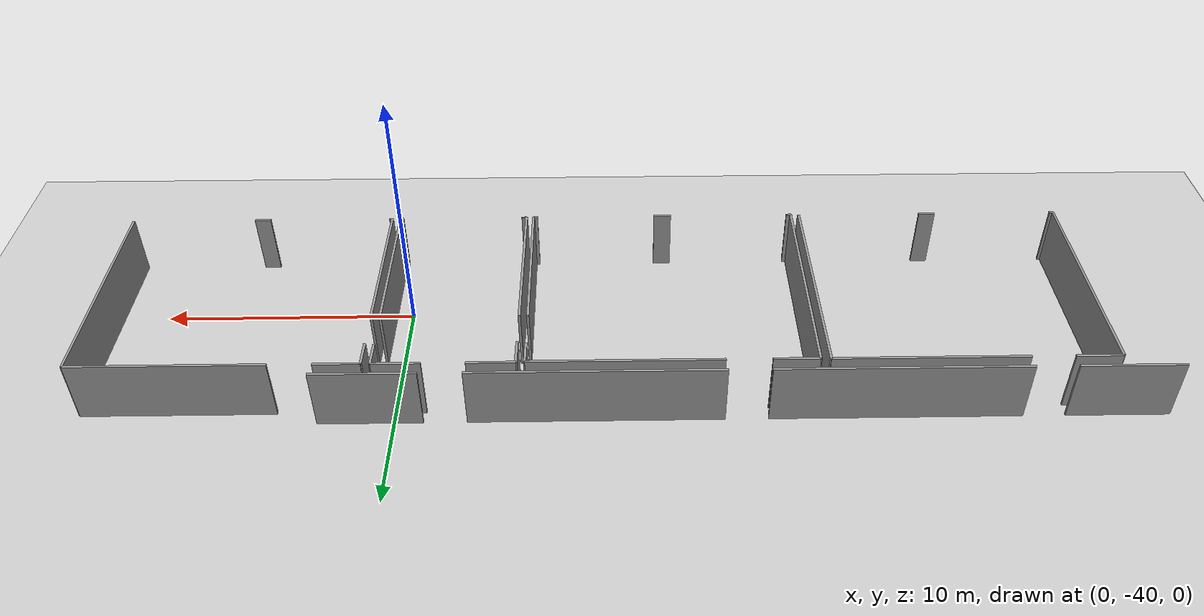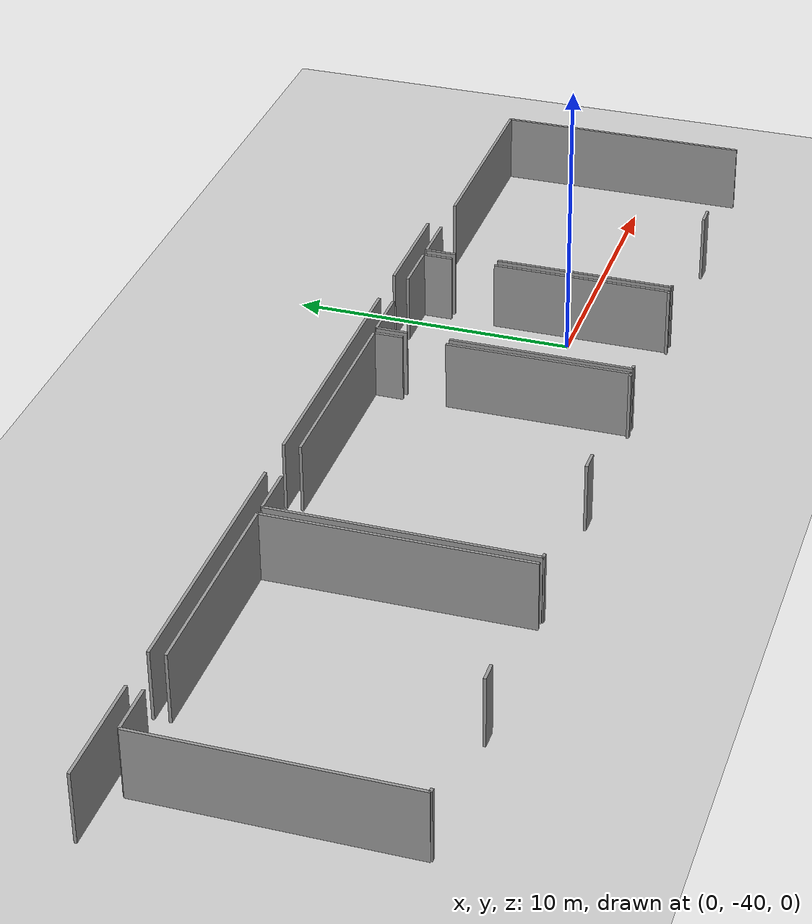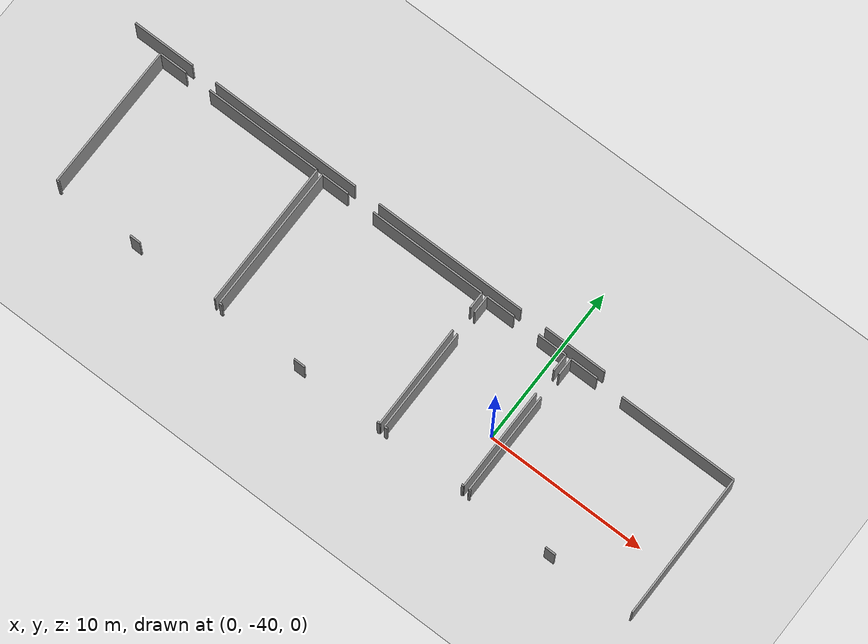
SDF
<sdf version="1.6">
 <world name="default">
  <model name="ground_plane">
   <static>1</static>
   <link name="link">
    <collision name="collision">
     <geometry><plane><normal>0 0 1</normal><size>100 100</size></plane></geometry>
     <surface><friction><ode><mu>100</mu><mu2>50</mu2></ode></friction></surface>
    </collision>
    <visual name="visual">
     <cast_shadows>0</cast_shadows>
     <geometry><plane><normal>0 0 1</normal><size>100 100</size></plane></geometry>
     <material>
      <script><uri>file://media/materials/scripts/gazebo.material</uri><name>Gazebo/Grey</name></script>
     </material>
    </visual>
   </link>
  </model>
  <model name="50015849">
   <static>1</static>
   <link name="Wall_76">
    <collision name="Wall_76_Collision">
     <geometry><box><size>3.97594416608 0.1 2.5</size></box></geometry>
     <pose>1.98797208304 0 1.25 0 0 0</pose>
    </collision>
    <visual name="Wall_76_Visual">
     <pose>1.98797208304 0 1.25 0 0 0</pose>
     <geometry><box><size>3.97594416608 0.1 2.5</size></box></geometry>
     <material>
      <script><uri>file://media/materials/scripts/gazebo.material</uri><name>Gazebo/Grey</name></script>
      <ambient>1 1 1 1</ambient>
     </material>
    </visual>
    <pose>128.94866861 -77.6431887316 0 0 0 3.14159265359</pose>
   </link>
   <link name="Wall_77">
    <collision name="Wall_77_Collision">
     <geometry><box><size>9.65815059663 0.1 2.5</size></box></geometry>
     <pose>4.82907529832 0 1.25 0 0 0</pose>
    </collision>
    <visual name="Wall_77_Visual">
     <pose>4.82907529832 0 1.25 0 0 0</pose>
     <geometry><box><size>9.65815059663 0.1 2.5</size></box></geometry>
     <material>
      <script><uri>file://media/materials/scripts/gazebo.material</uri><name>Gazebo/Grey</name></script>
      <ambient>1 1 1 1</ambient>
     </material>
    </visual>
    <pose>123.3388583 -77.6431887316 0 0 0 3.14159265359</pose>
   </link>
   <link name="Wall_78">
    <collision name="Wall_78_Collision">
     <geometry><box><size>9.58702458293 0.1 2.5</size></box></geometry>
     <pose>4.79351229146 0 1.25 0 0 0</pose>
    </collision>
    <visual name="Wall_78_Visual">
     <pose>4.79351229146 0 1.25 0 0 0</pose>
     <geometry><box><size>9.58702458293 0.1 2.5</size></box></geometry>
     <material>
      <script><uri>file://media/materials/scripts/gazebo.material</uri><name>Gazebo/Grey</name></script>
      <ambient>1 1 1 1</ambient>
     </material>
    </visual>
    <pose>112.063352956 -77.6431887316 0 0 0 3.14159265359</pose>
   </link>
   <link name="Wall_79">
    <collision name="Wall_79_Collision">
     <geometry><box><size>3.96451319959 0.1 2.5</size></box></geometry>
     <pose>1.9822565998 0 1.25 0 0 0</pose>
    </collision>
    <visual name="Wall_79_Visual">
     <pose>1.9822565998 0 1.25 0 0 0</pose>
     <geometry><box><size>3.96451319959 0.1 2.5</size></box></geometry>
     <material>
      <script><uri>file://media/materials/scripts/gazebo.material</uri><name>Gazebo/Grey</name></script>
      <ambient>1 1 1 1</ambient>
     </material>
    </visual>
    <pose>100.880565452 -77.6431887316 0 0 0 3.14159265359</pose>
   </link>
   <link name="Wall_121">
    <collision name="Wall_121_Collision">
     <geometry><box><size>0.669854636209 0.1 2.5</size></box></geometry>
     <pose>0.334927318105 0 1.25 0 0 0</pose>
    </collision>
    <visual name="Wall_121_Visual">
     <pose>0.334927318105 0 1.25 0 0 0</pose>
     <geometry><box><size>0.669854636209 0.1 2.5</size></box></geometry>
     <material>
      <script><uri>file://media/materials/scripts/gazebo.material</uri><name>Gazebo/Grey</name></script>
      <ambient>1 1 1 1</ambient>
     </material>
    </visual>
    <pose>104.812055859 -87.2195444125 0 0 0 3.14159265359</pose>
   </link>
   <link name="Wall_122">
    <collision name="Wall_122_Collision">
     <geometry><box><size>0.153682993897 0.1 2.5</size></box></geometry>
     <pose>0.0768414969486 0 1.25 0 0 0</pose>
    </collision>
    <visual name="Wall_122_Visual">
     <pose>0.0768414969486 0 1.25 0 0 0</pose>
     <geometry><box><size>0.153682993897 0.1 2.5</size></box></geometry>
     <material>
      <script><uri>file://media/materials/scripts/gazebo.material</uri><name>Gazebo/Grey</name></script>
      <ambient>1 1 1 1</ambient>
     </material>
    </visual>
    <pose>99.2441590937 -87.2195444125 0 0 0 3.14159265359</pose>
   </link>
   <link name="Wall_123">
    <collision name="Wall_123_Collision">
     <geometry><box><size>9.03554395524 0.1 2.5</size></box></geometry>
     <pose>4.51777197762 0 1.25 0 0 0</pose>
    </collision>
    <visual name="Wall_123_Visual">
     <pose>4.51777197762 0 1.25 0 0 0</pose>
     <geometry><box><size>9.03554395524 0.1 2.5</size></box></geometry>
     <material>
      <script><uri>file://media/materials/scripts/gazebo.material</uri><name>Gazebo/Grey</name></script>
      <ambient>1 1 1 1</ambient>
     </material>
    </visual>
    <pose>99.0904760998 -87.2195444125 0 0 0 1.57079632679</pose>
   </link>
   <link name="Wall_124">
    <collision name="Wall_124_Collision">
     <geometry><box><size>1.76570329021 0.1 2.5</size></box></geometry>
     <pose>0.882851645107 0 1.25 0 0 0</pose>
    </collision>
    <visual name="Wall_124_Visual">
     <pose>0.882851645107 0 1.25 0 0 0</pose>
     <geometry><box><size>1.76570329021 0.1 2.5</size></box></geometry>
     <material>
      <script><uri>file://media/materials/scripts/gazebo.material</uri><name>Gazebo/Grey</name></script>
      <ambient>1 1 1 1</ambient>
     </material>
    </visual>
    <pose>99.0904760998 -78.1840004572 0 0 0 0.0</pose>
   </link>
   <link name="Wall_125">
    <collision name="Wall_125_Collision">
     <geometry><box><size>7.38821467355 0.1 2.5</size></box></geometry>
     <pose>3.69410733678 0 1.25 0 0 0</pose>
    </collision>
    <visual name="Wall_125_Visual">
     <pose>3.69410733678 0 1.25 0 0 0</pose>
     <geometry><box><size>7.38821467355 0.1 2.5</size></box></geometry>
     <material>
      <script><uri>file://media/materials/scripts/gazebo.material</uri><name>Gazebo/Grey</name></script>
      <ambient>1 1 1 1</ambient>
     </material>
    </visual>
    <pose>102.487251297 -78.1840004572 0 0 0 0.0</pose>
   </link>
   <link name="Wall_126">
    <collision name="Wall_126_Collision">
     <geometry><box><size>9.03564836625 0.1 2.5</size></box></geometry>
     <pose>4.51782418312 0 1.25 0 0 0</pose>
    </collision>
    <visual name="Wall_126_Visual">
     <pose>4.51782418312 0 1.25 0 0 0</pose>
     <geometry><box><size>9.03564836625 0.1 2.5</size></box></geometry>
     <material>
      <script><uri>file://media/materials/scripts/gazebo.material</uri><name>Gazebo/Grey</name></script>
      <ambient>1 1 1 1</ambient>
     </material>
    </visual>
    <pose>109.875465971 -78.1840004572 0 0 0 -1.56598894184</pose>
   </link>
   <link name="Wall_127">
    <collision name="Wall_127_Collision">
     <geometry><box><size>0.176798948351 0.1 2.5</size></box></geometry>
     <pose>0.0883994741755 0 1.25 0 0 0</pose>
    </collision>
    <visual name="Wall_127_Visual">
     <pose>0.0883994741755 0 1.25 0 0 0</pose>
     <geometry><box><size>0.176798948351 0.1 2.5</size></box></geometry>
     <material>
      <script><uri>file://media/materials/scripts/gazebo.material</uri><name>Gazebo/Grey</name></script>
      <ambient>1 1 1 1</ambient>
     </material>
    </visual>
    <pose>121.140810456 -87.2299592931 0 0 0 3.14159265359</pose>
   </link>
   <link name="Wall_128">
    <collision name="Wall_128_Collision">
     <geometry><box><size>0.707195793404 0.1 2.5</size></box></geometry>
     <pose>0.353597896702 0 1.25 0 0 0</pose>
    </collision>
    <visual name="Wall_128_Visual">
     <pose>0.353597896702 0 1.25 0 0 0</pose>
     <geometry><box><size>0.707195793404 0.1 2.5</size></box></geometry>
     <material>
      <script><uri>file://media/materials/scripts/gazebo.material</uri><name>Gazebo/Grey</name></script>
      <ambient>1 1 1 1</ambient>
     </material>
    </visual>
    <pose>116.051236132 -87.2299592931 0 0 0 3.14159265359</pose>
   </link>
   <link name="Wall_129">
    <collision name="Wall_129_Collision">
     <geometry><box><size>0.189500022227 0.1 2.5</size></box></geometry>
     <pose>0.0947500111134 0 1.25 0 0 0</pose>
    </collision>
    <visual name="Wall_129_Visual">
     <pose>0.0947500111134 0 1.25 0 0 0</pose>
     <geometry><box><size>0.189500022227 0.1 2.5</size></box></geometry>
     <material>
      <script><uri>file://media/materials/scripts/gazebo.material</uri><name>Gazebo/Grey</name></script>
      <ambient>1 1 1 1</ambient>
     </material>
    </visual>
    <pose>110.443712016 -87.2299592931 0 0 0 3.14159265359</pose>
   </link>
   <link name="Wall_130">
    <collision name="Wall_130_Collision">
     <geometry><box><size>9.02995548274 0.1 2.5</size></box></geometry>
     <pose>4.51497774137 0 1.25 0 0 0</pose>
    </collision>
    <visual name="Wall_130_Visual">
     <pose>4.51497774137 0 1.25 0 0 0</pose>
     <geometry><box><size>9.02995548274 0.1 2.5</size></box></geometry>
     <material>
      <script><uri>file://media/materials/scripts/gazebo.material</uri><name>Gazebo/Grey</name></script>
      <ambient>1 1 1 1</ambient>
     </material>
    </visual>
    <pose>110.254211994 -87.2299592931 0 0 0 1.57079632679</pose>
   </link>
   <link name="Wall_131">
    <collision name="Wall_131_Collision">
     <geometry><box><size>1.75554243111 0.1 2.5</size></box></geometry>
     <pose>0.877771215556 0 1.25 0 0 0</pose>
    </collision>
    <visual name="Wall_131_Visual">
     <pose>0.877771215556 0 1.25 0 0 0</pose>
     <geometry><box><size>1.75554243111 0.1 2.5</size></box></geometry>
     <material>
      <script><uri>file://media/materials/scripts/gazebo.material</uri><name>Gazebo/Grey</name></script>
      <ambient>1 1 1 1</ambient>
     </material>
    </visual>
    <pose>110.254211994 -78.2000038103 0 0 0 0.0</pose>
   </link>
   <link name="Wall_132">
    <collision name="Wall_132_Collision">
     <geometry><box><size>7.37805381445 0.1 2.5</size></box></geometry>
     <pose>3.68902690723 0 1.25 0 0 0</pose>
    </collision>
    <visual name="Wall_132_Visual">
     <pose>3.68902690723 0 1.25 0 0 0</pose>
     <geometry><box><size>7.37805381445 0.1 2.5</size></box></geometry>
     <material>
      <script><uri>file://media/materials/scripts/gazebo.material</uri><name>Gazebo/Grey</name></script>
      <ambient>1 1 1 1</ambient>
     </material>
    </visual>
    <pose>113.724145376 -78.2000038103 0 0 0 0.0</pose>
   </link>
   <link name="Wall_133">
    <collision name="Wall_133_Collision">
     <geometry><box><size>1.03615360679 0.1 2.5</size></box></geometry>
     <pose>0.518076803394 0 1.25 0 0 0</pose>
    </collision>
    <visual name="Wall_133_Visual">
     <pose>0.518076803394 0 1.25 0 0 0</pose>
     <geometry><box><size>1.03615360679 0.1 2.5</size></box></geometry>
     <material>
      <script><uri>file://media/materials/scripts/gazebo.material</uri><name>Gazebo/Grey</name></script>
      <ambient>1 1 1 1</ambient>
     </material>
    </visual>
    <pose>121.102199191 -78.2000038103 0 0 0 -1.57079632679</pose>
   </link>
   <link name="Wall_134">
    <collision name="Wall_134_Collision">
     <geometry><box><size>6.45378515922 0.1 2.5</size></box></geometry>
     <pose>3.22689257961 0 1.25 0 0 0</pose>
    </collision>
    <visual name="Wall_134_Visual">
     <pose>3.22689257961 0 1.25 0 0 0</pose>
     <geometry><box><size>6.45378515922 0.1 2.5</size></box></geometry>
     <material>
      <script><uri>file://media/materials/scripts/gazebo.material</uri><name>Gazebo/Grey</name></script>
      <ambient>1 1 1 1</ambient>
     </material>
    </visual>
    <pose>121.102199191 -80.7762896353 0 0 0 -1.56481355948</pose>
   </link>
   <link name="Wall_135">
    <collision name="Wall_135_Collision">
     <geometry><box><size>0.138949748201 0.1 2.5</size></box></geometry>
     <pose>0.0694748741006 0 1.25 0 0 0</pose>
    </collision>
    <visual name="Wall_135_Visual">
     <pose>0.0694748741006 0 1.25 0 0 0</pose>
     <geometry><box><size>0.138949748201 0.1 2.5</size></box></geometry>
     <material>
      <script><uri>file://media/materials/scripts/gazebo.material</uri><name>Gazebo/Grey</name></script>
      <ambient>1 1 1 1</ambient>
     </material>
    </visual>
    <pose>126.748334572 -87.2045571453 0 0 0 3.14159265359</pose>
   </link>
   <link name="Wall_136">
    <collision name="Wall_136_Collision">
     <geometry><box><size>0.201947074625 0.1 2.5</size></box></geometry>
     <pose>0.100973537313 0 1.25 0 0 0</pose>
    </collision>
    <visual name="Wall_136_Visual">
     <pose>0.100973537313 0 1.25 0 0 0</pose>
     <geometry><box><size>0.201947074625 0.1 2.5</size></box></geometry>
     <material>
      <script><uri>file://media/materials/scripts/gazebo.material</uri><name>Gazebo/Grey</name></script>
      <ambient>1 1 1 1</ambient>
     </material>
    </visual>
    <pose>121.6333581 -87.2045571453 0 0 0 3.14159265359</pose>
   </link>
   <link name="Wall_137">
    <collision name="Wall_137_Collision">
     <geometry><box><size>6.39981710454 0.1 2.5</size></box></geometry>
     <pose>3.19990855227 0 1.25 0 0 0</pose>
    </collision>
    <visual name="Wall_137_Visual">
     <pose>3.19990855227 0 1.25 0 0 0</pose>
     <geometry><box><size>6.39981710454 0.1 2.5</size></box></geometry>
     <material>
      <script><uri>file://media/materials/scripts/gazebo.material</uri><name>Gazebo/Grey</name></script>
      <ambient>1 1 1 1</ambient>
     </material>
    </visual>
    <pose>121.431411026 -87.2045571453 0 0 0 1.57079632679</pose>
   </link>
   <link name="Wall_138">
    <collision name="Wall_138_Collision">
     <geometry><box><size>1.1184565655 0.1 2.5</size></box></geometry>
     <pose>0.559228282751 0 1.25 0 0 0</pose>
    </collision>
    <visual name="Wall_138_Visual">
     <pose>0.559228282751 0 1.25 0 0 0</pose>
     <geometry><box><size>1.1184565655 0.1 2.5</size></box></geometry>
     <material>
      <script><uri>file://media/materials/scripts/gazebo.material</uri><name>Gazebo/Grey</name></script>
      <ambient>1 1 1 1</ambient>
     </material>
    </visual>
    <pose>121.431411026 -79.2943283355 0 0 0 1.57079632679</pose>
   </link>
   <link name="Wall_139">
    <collision name="Wall_139_Collision">
     <geometry><box><size>1.83505115358 0.1 2.5</size></box></geometry>
     <pose>0.917525576788 0 1.25 0 0 0</pose>
    </collision>
    <visual name="Wall_139_Visual">
     <pose>0.917525576788 0 1.25 0 0 0</pose>
     <geometry><box><size>1.83505115358 0.1 2.5</size></box></geometry>
     <material>
      <script><uri>file://media/materials/scripts/gazebo.material</uri><name>Gazebo/Grey</name></script>
      <ambient>1 1 1 1</ambient>
     </material>
    </visual>
    <pose>121.431411026 -78.17587177 0 0 0 0.0</pose>
   </link>
   <link name="Wall_140">
    <collision name="Wall_140_Collision">
     <geometry><box><size>1.84394190529 0.1 2.5</size></box></geometry>
     <pose>0.921970952644 0 1.25 0 0 0</pose>
    </collision>
    <visual name="Wall_140_Visual">
     <pose>0.921970952644 0 1.25 0 0 0</pose>
     <geometry><box><size>1.84394190529 0.1 2.5</size></box></geometry>
     <material>
      <script><uri>file://media/materials/scripts/gazebo.material</uri><name>Gazebo/Grey</name></script>
      <ambient>1 1 1 1</ambient>
     </material>
    </visual>
    <pose>124.895755936 -78.17587177 0 0 0 0.0</pose>
   </link>
   <link name="Wall_141">
    <collision name="Wall_141_Collision">
     <geometry><box><size>1.07197063512 0.1 2.5</size></box></geometry>
     <pose>0.535985317559 0 1.25 0 0 0</pose>
    </collision>
    <visual name="Wall_141_Visual">
     <pose>0.535985317559 0 1.25 0 0 0</pose>
     <geometry><box><size>1.07197063512 0.1 2.5</size></box></geometry>
     <material>
      <script><uri>file://media/materials/scripts/gazebo.material</uri><name>Gazebo/Grey</name></script>
      <ambient>1 1 1 1</ambient>
     </material>
    </visual>
    <pose>126.739697841 -78.17587177 0 0 0 -1.57079632679</pose>
   </link>
   <link name="Wall_142">
    <collision name="Wall_142_Collision">
     <geometry><box><size>6.38178742385 0.1 2.5</size></box></geometry>
     <pose>3.19089371193 0 1.25 0 0 0</pose>
    </collision>
    <visual name="Wall_142_Visual">
     <pose>3.19089371193 0 1.25 0 0 0</pose>
     <geometry><box><size>6.38178742385 0.1 2.5</size></box></geometry>
     <material>
      <script><uri>file://media/materials/scripts/gazebo.material</uri><name>Gazebo/Grey</name></script>
      <ambient>1 1 1 1</ambient>
     </material>
    </visual>
    <pose>126.739697841 -80.8227755657 0 0 0 -1.56944298606</pose>
   </link>
   <link name="Wall_144">
    <collision name="Wall_144_Collision">
     <geometry><box><size>0.658931712676 0.1 2.5</size></box></geometry>
     <pose>0.329465856338 0 1.25 0 0 0</pose>
    </collision>
    <visual name="Wall_144_Visual">
     <pose>0.329465856338 0 1.25 0 0 0</pose>
     <geometry><box><size>0.658931712676 0.1 2.5</size></box></geometry>
     <material>
      <script><uri>file://media/materials/scripts/gazebo.material</uri><name>Gazebo/Grey</name></script>
      <ambient>1 1 1 1</ambient>
     </material>
    </visual>
    <pose>132.849422419 -87.1921100929 0 0 0 3.14159265359</pose>
   </link>
   <link name="Wall_145">
    <collision name="Wall_145_Collision">
     <geometry><box><size>0.12066020182 0.1 2.5</size></box></geometry>
     <pose>0.06033010091 0 1.25 0 0 0</pose>
    </collision>
    <visual name="Wall_145_Visual">
     <pose>0.06033010091 0 1.25 0 0 0</pose>
     <geometry><box><size>0.12066020182 0.1 2.5</size></box></geometry>
     <material>
      <script><uri>file://media/materials/scripts/gazebo.material</uri><name>Gazebo/Grey</name></script>
      <ambient>1 1 1 1</ambient>
     </material>
    </visual>
    <pose>127.204557145 -87.1921100929 0 0 0 3.14159265359</pose>
   </link>
   <link name="Wall_146">
    <collision name="Wall_146_Collision">
     <geometry><box><size>6.35002889494 0.1 2.5</size></box></geometry>
     <pose>3.17501444747 0 1.25 0 0 0</pose>
    </collision>
    <visual name="Wall_146_Visual">
     <pose>3.17501444747 0 1.25 0 0 0</pose>
     <geometry><box><size>6.35002889494 0.1 2.5</size></box></geometry>
     <material>
      <script><uri>file://media/materials/scripts/gazebo.material</uri><name>Gazebo/Grey</name></script>
      <ambient>1 1 1 1</ambient>
     </material>
    </visual>
    <pose>127.083896943 -87.1921100929 0 0 0 1.57079632679</pose>
   </link>
   <link name="Wall_147">
    <collision name="Wall_147_Collision">
     <geometry><box><size>1.08721192377 0.1 2.5</size></box></geometry>
     <pose>0.543605961884 0 1.25 0 0 0</pose>
    </collision>
    <visual name="Wall_147_Visual">
     <pose>0.543605961884 0 1.25 0 0 0</pose>
     <geometry><box><size>1.08721192377 0.1 2.5</size></box></geometry>
     <material>
      <script><uri>file://media/materials/scripts/gazebo.material</uri><name>Gazebo/Grey</name></script>
      <ambient>1 1 1 1</ambient>
     </material>
    </visual>
    <pose>127.083896943 -79.2684181448 0 0 0 1.57079632679</pose>
   </link>
   <link name="Wall_148">
    <collision name="Wall_148_Collision">
     <geometry><box><size>1.76798948351 0.1 2.5</size></box></geometry>
     <pose>0.883994741755 0 1.25 0 0 0</pose>
    </collision>
    <visual name="Wall_148_Visual">
     <pose>0.883994741755 0 1.25 0 0 0</pose>
     <geometry><box><size>1.76798948351 0.1 2.5</size></box></geometry>
     <material>
      <script><uri>file://media/materials/scripts/gazebo.material</uri><name>Gazebo/Grey</name></script>
      <ambient>1 1 1 1</ambient>
     </material>
    </visual>
    <pose>127.083896943 -78.181206221 0 0 0 0.0</pose>
   </link>
   <link name="Wall_149">
    <collision name="Wall_149_Collision">
     <geometry><box><size>7.41412486426 0.1 2.5</size></box></geometry>
     <pose>3.70706243213 0 1.25 0 0 0</pose>
    </collision>
    <visual name="Wall_149_Visual">
     <pose>3.70706243213 0 1.25 0 0 0</pose>
     <geometry><box><size>7.41412486426 0.1 2.5</size></box></geometry>
     <material>
      <script><uri>file://media/materials/scripts/gazebo.material</uri><name>Gazebo/Grey</name></script>
      <ambient>1 1 1 1</ambient>
     </material>
    </visual>
    <pose>130.50455016 -78.181206221 0 0 0 0.0</pose>
   </link>
   <link name="Wall_150">
    <collision name="Wall_150_Collision">
     <geometry><box><size>9.01092455281 0.1 2.5</size></box></geometry>
     <pose>4.50546227641 0 1.25 0 0 0</pose>
    </collision>
    <visual name="Wall_150_Visual">
     <pose>4.50546227641 0 1.25 0 0 0</pose>
     <geometry><box><size>9.01092455281 0.1 2.5</size></box></geometry>
     <material>
      <script><uri>file://media/materials/scripts/gazebo.material</uri><name>Gazebo/Grey</name></script>
      <ambient>1 1 1 1</ambient>
     </material>
    </visual>
    <pose>137.918675024 -78.181206221 0 0 0 -1.56865385551</pose>
   </link>
   <pose>-126.05 43.7425752697 0 0 0 0</pose>
  </model>
 </world>
</sdf>
